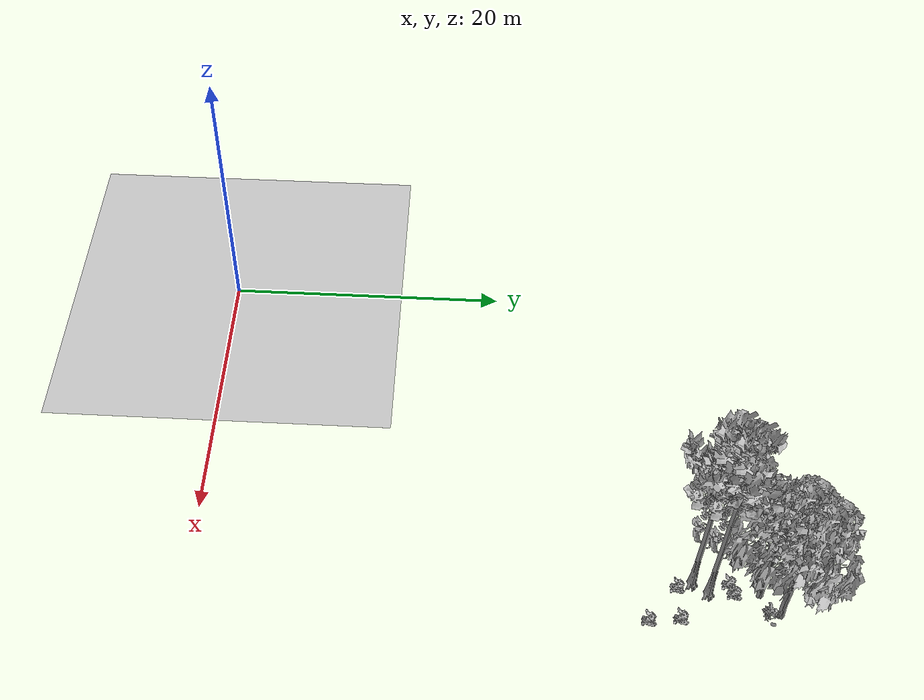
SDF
<sdf version="1.7">
 <world name="default">
  <model name="ground_plane">
   <static>1</static>
   <link name="link">
    <collision name="collision">
     <pose>-50 0 0 0 -0 0</pose>
     <geometry><plane><normal>0 0 1</normal><size>80 80</size></plane></geometry>
     <surface><contact><ode><min_depth>0.01</min_depth><max_vel>0</max_vel></ode></contact></surface>
    </collision>
    <visual name="grass">
     <cast_shadows>0</cast_shadows>
     <geometry>
      <mesh>
       <scale>0.46714285714285714 0.46714285714285714 0.1</scale>
       <uri>file://grass_plane/meshes/grass_plane.dae</uri>
      </mesh>
     </geometry>
    </visual>
   </link>
  </model>
  <model name="Tree 27">
   <static>1</static>
   <pose>24.695511156107422 34.17719131181778 0 1.57079 -0 0</pose>
   <link name="link">
    <collision name="collision">
     <geometry><mesh><scale>3.5 5 3.5</scale><uri>model://tree_9/meshes/tree_9.obj</uri></mesh></geometry>
    </collision>
    <visual name="visual">
     <geometry><mesh><scale>3.5 5 3.5</scale><uri>model://tree_9/meshes/tree_9.obj</uri></mesh></geometry>
    </visual>
   </link>
  </model>
  <model name="Tree 47">
   <static>1</static>
   <pose>26.215045186956843 38.594626859513895 0 1.57079 -0 0</pose>
   <link name="link">
    <collision name="collision">
     <geometry><mesh><scale>3.5 5 3.5</scale><uri>model://tree_2/meshes/tree_2.obj</uri></mesh></geometry>
    </collision>
    <visual name="visual">
     <geometry><mesh><scale>3.5 5 3.5</scale><uri>model://tree_2/meshes/tree_2.obj</uri></mesh></geometry>
    </visual>
   </link>
  </model>
  <model name="Tree 256">
   <static>1</static>
   <pose>24.790760878011902 37.40755460182817 0 1.57079 -0 0</pose>
   <link name="link">
    <collision name="collision">
     <geometry><mesh><scale>3.5 5 3.5</scale><uri>model://tree_2/meshes/tree_2.obj</uri></mesh></geometry>
    </collision>
    <visual name="visual">
     <geometry><mesh><scale>3.5 5 3.5</scale><uri>model://tree_2/meshes/tree_2.obj</uri></mesh></geometry>
    </visual>
   </link>
  </model>
  <model name="Tree 414">
   <static>1</static>
   <pose>23.994010784650214 33.150980064409424 0 1.57079 -0 0</pose>
   <link name="link">
    <collision name="collision">
     <geometry><mesh><scale>3.5 5 3.5</scale><uri>model://tree_9/meshes/tree_9.obj</uri></mesh></geometry>
    </collision>
    <visual name="visual">
     <geometry><mesh><scale>3.5 5 3.5</scale><uri>model://tree_9/meshes/tree_9.obj</uri></mesh></geometry>
    </visual>
   </link>
  </model>
  <model name="Bush 54">
   <static>1</static>
   <pose>26.715773373363035 32.24017362022953 0 1.57079 -0 0</pose>
   <link name="link">
    <collision name="collision">
     <geometry><mesh><scale>2 2 2</scale><uri>model://bush_2/meshes/bush_2.obj</uri></mesh></geometry>
     <surface><contact><collide_without_contact>false</collide_without_contact></contact></surface>
    </collision>
    <visual name="visual">
     <geometry><mesh><scale>2 2 2</scale><uri>model://bush_2/meshes/bush_2.obj</uri></mesh></geometry>
    </visual>
   </link>
  </model>
  <model name="Bush 62">
   <static>1</static>
   <pose>26.940594239482763 30.168109011204095 0 1.57079 -0 0</pose>
   <link name="link">
    <collision name="collision">
     <geometry><mesh><scale>2 2 2</scale><uri>model://bush_2/meshes/bush_2.obj</uri></mesh></geometry>
     <surface><contact><collide_without_contact>false</collide_without_contact></contact></surface>
    </collision>
    <visual name="visual">
     <geometry><mesh><scale>2 2 2</scale><uri>model://bush_2/meshes/bush_2.obj</uri></mesh></geometry>
    </visual>
   </link>
  </model>
  <model name="Bush 69">
   <static>1</static>
   <pose>22.66997176830896 38.13100543789227 0 1.57079 -0 0</pose>
   <link name="link">
    <collision name="collision">
     <geometry><mesh><scale>2 2 2</scale><uri>model://bush_5/meshes/bush_5.obj</uri></mesh></geometry>
     <surface><contact><collide_without_contact>false</collide_without_contact></contact></surface>
    </collision>
    <visual name="visual">
     <geometry><mesh><scale>2 2 2</scale><uri>model://bush_5/meshes/bush_5.obj</uri></mesh></geometry>
    </visual>
   </link>
  </model>
  <model name="Bush 258">
   <static>1</static>
   <pose>24.754100001190977 35.816988395886 0 1.57079 -0 0</pose>
   <link name="link">
    <collision name="collision">
     <geometry><mesh><scale>2 2 2</scale><uri>model://bush_2/meshes/bush_2.obj</uri></mesh></geometry>
     <surface><contact><collide_without_contact>false</collide_without_contact></contact></surface>
    </collision>
    <visual name="visual">
     <geometry><mesh><scale>2 2 2</scale><uri>model://bush_2/meshes/bush_2.obj</uri></mesh></geometry>
    </visual>
   </link>
  </model>
  <model name="Bush 282">
   <static>1</static>
   <pose>24.03282010650117 35.544846332540004 0 1.57079 -0 0</pose>
   <link name="link">
    <collision name="collision">
     <geometry><mesh><scale>2 2 2</scale><uri>model://bush_2/meshes/bush_2.obj</uri></mesh></geometry>
     <surface><contact><collide_without_contact>false</collide_without_contact></contact></surface>
    </collision>
    <visual name="visual">
     <geometry><mesh><scale>2 2 2</scale><uri>model://bush_2/meshes/bush_2.obj</uri></mesh></geometry>
    </visual>
   </link>
  </model>
  <model name="Bush 379">
   <static>1</static>
   <pose>24.449567233482966 32.149087395926244 0 1.57079 -0 0</pose>
   <link name="link">
    <collision name="collision">
     <geometry><mesh><scale>2 2 2</scale><uri>model://bush_2/meshes/bush_2.obj</uri></mesh></geometry>
     <surface><contact><collide_without_contact>false</collide_without_contact></contact></surface>
    </collision>
    <visual name="visual">
     <geometry><mesh><scale>2 2 2</scale><uri>model://bush_2/meshes/bush_2.obj</uri></mesh></geometry>
    </visual>
   </link>
  </model>
  <model name="Bush 521">
   <static>1</static>
   <pose>26.512973684502484 37.751016271357585 0 1.57079 -0 0</pose>
   <link name="link">
    <collision name="collision">
     <geometry><mesh><scale>2 2 2</scale><uri>model://bush_4/meshes/bush_4.obj</uri></mesh></geometry>
     <surface><contact><collide_without_contact>false</collide_without_contact></contact></surface>
    </collision>
    <visual name="visual">
     <geometry><mesh><scale>2 2 2</scale><uri>model://bush_4/meshes/bush_4.obj</uri></mesh></geometry>
    </visual>
   </link>
  </model>
 </world>
</sdf>
